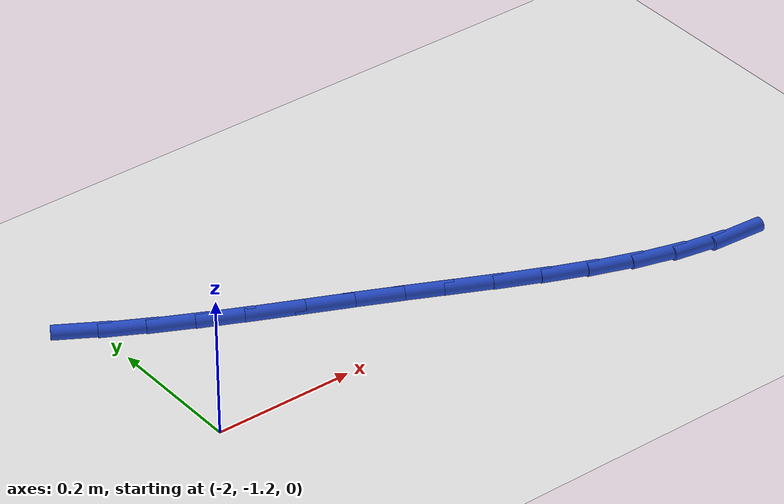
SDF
<sdf version="1.6">
 <world name="default">
  <model name="ground_plane">
   <static>1</static>
   <link name="link">
    <collision name="collision">
     <geometry><plane><normal>0 0 1</normal><size>100 100</size></plane></geometry>
     <surface><friction><ode><mu>100</mu><mu2>50</mu2></ode></friction></surface>
    </collision>
    <visual name="visual">
     <cast_shadows>0</cast_shadows>
     <geometry><plane><normal>0 0 1</normal><size>100 100</size></plane></geometry>
     <material>
      <script><uri>file://media/materials/scripts/gazebo.material</uri><name>Gazebo/WhiteGlow</name></script>
     </material>
    </visual>
   </link>
  </model>
  <model name="line">
   <link name="link_75">
    <pose>-2.0207562787094804 -0.9274636396705164 0.01 0 1.57 -0.547700571020834</pose>
    <collision name="collision">
     <geometry><cylinder><radius>0.01</radius><length>0.08</length></cylinder></geometry>
    </collision>
    <visual name="visual">
     <material>
      <script><name>Gazebo/Blue</name><uri>file://media/materials/scripts/gazebo.material</uri></script>
     </material>
     <geometry><cylinder><radius>0.01</radius><length>0.08</length></cylinder></geometry>
    </visual>
   </link>
   <link name="link_76">
    <pose>-1.9692782995515379 -0.9588624210705634 0.01 0 1.57 -0.4993900773391051</pose>
    <collision name="collision">
     <geometry><cylinder><radius>0.01</radius><length>0.08</length></cylinder></geometry>
    </collision>
    <visual name="visual">
     <material>
      <script><name>Gazebo/Blue</name><uri>file://media/materials/scripts/gazebo.material</uri></script>
     </material>
     <geometry><cylinder><radius>0.01</radius><length>0.08</length></cylinder></geometry>
    </visual>
   </link>
   <link name="link_77">
    <pose>-1.9149379938659956 -0.9885056447868948 0.01 0 1.57 -0.4647903911772186</pose>
    <collision name="collision">
     <geometry><cylinder><radius>0.01</radius><length>0.08</length></cylinder></geometry>
    </collision>
    <visual name="visual">
     <material>
      <script><name>Gazebo/Blue</name><uri>file://media/materials/scripts/gazebo.material</uri></script>
     </material>
     <geometry><cylinder><radius>0.01</radius><length>0.08</length></cylinder></geometry>
    </visual>
   </link>
   <link name="link_78">
    <pose>-1.8583272007567118 -1.0168919548667243 0.01 0 1.57 -0.44261593372257907</pose>
    <collision name="collision">
     <geometry><cylinder><radius>0.01</radius><length>0.08</length></cylinder></geometry>
    </collision>
    <visual name="visual">
     <material>
      <script><name>Gazebo/Blue</name><uri>file://media/materials/scripts/gazebo.material</uri></script>
     </material>
     <geometry><cylinder><radius>0.01</radius><length>0.08</length></cylinder></geometry>
    </visual>
   </link>
   <link name="link_79">
    <pose>-1.8000377593275434 -1.044519995357263 0.01 0 1.57 -0.4319077129404349</pose>
    <collision name="collision">
     <geometry><cylinder><radius>0.01</radius><length>0.08</length></cylinder></geometry>
    </collision>
    <visual name="visual">
     <material>
      <script><name>Gazebo/Blue</name><uri>file://media/materials/scripts/gazebo.material</uri></script>
     </material>
     <geometry><cylinder><radius>0.01</radius><length>0.08</length></cylinder></geometry>
    </visual>
   </link>
   <link name="link_80">
    <pose>-1.7406615086823454 -1.0718884103057231 0.01 0 1.57 -0.4320574577965329</pose>
    <collision name="collision">
     <geometry><cylinder><radius>0.01</radius><length>0.08</length></cylinder></geometry>
    </collision>
    <visual name="visual">
     <material>
      <script><name>Gazebo/Blue</name><uri>file://media/materials/scripts/gazebo.material</uri></script>
     </material>
     <geometry><cylinder><radius>0.01</radius><length>0.08</length></cylinder></geometry>
    </visual>
   </link>
   <link name="link_81">
    <pose>-1.6807902879249739 -1.0994958437593174 0.01 0 1.57 -0.4420840871450925</pose>
    <collision name="collision">
     <geometry><cylinder><radius>0.01</radius><length>0.08</length></cylinder></geometry>
    </collision>
    <visual name="visual">
     <material>
      <script><name>Gazebo/Blue</name><uri>file://media/materials/scripts/gazebo.material</uri></script>
     </material>
     <geometry><cylinder><radius>0.01</radius><length>0.08</length></cylinder></geometry>
    </visual>
   </link>
   <link name="link_82">
    <pose>-1.620999904977639 -1.1277963673505813 0.01 0 1.57 -0.4495933548093528</pose>
    <collision name="collision">
     <geometry><cylinder><radius>0.01</radius><length>0.08</length></cylinder></geometry>
    </collision>
    <visual name="visual">
     <material>
      <script><name>Gazebo/Blue</name><uri>file://media/materials/scripts/gazebo.material</uri></script>
     </material>
     <geometry><cylinder><radius>0.01</radius><length>0.08</length></cylinder></geometry>
    </visual>
   </link>
   <link name="link_83">
    <pose>-1.561586513883594 -1.1564665149776374 0.01 0 1.57 -0.44401701980004915</pose>
    <collision name="collision">
     <geometry><cylinder><radius>0.01</radius><length>0.08</length></cylinder></geometry>
    </collision>
    <visual name="visual">
     <material>
      <script><name>Gazebo/Blue</name><uri>file://media/materials/scripts/gazebo.material</uri></script>
     </material>
     <geometry><cylinder><radius>0.01</radius><length>0.08</length></cylinder></geometry>
    </visual>
   </link>
   <link name="link_84">
    <pose>-1.502608638606615 -1.1845221239864308 0.01 0 1.57 -0.4244844911767459</pose>
    <collision name="collision">
     <geometry><cylinder><radius>0.01</radius><length>0.08</length></cylinder></geometry>
    </collision>
    <visual name="visual">
     <material>
      <script><name>Gazebo/Blue</name><uri>file://media/materials/scripts/gazebo.material</uri></script>
     </material>
     <geometry><cylinder><radius>0.01</radius><length>0.08</length></cylinder></geometry>
    </visual>
   </link>
   <link name="link_85">
    <pose>-1.4441172466124643 -1.2109580219576739 0.01 0 1.57 -0.38983410650267536</pose>
    <collision name="collision">
     <geometry><cylinder><radius>0.01</radius><length>0.08</length></cylinder></geometry>
    </collision>
    <visual name="visual">
     <material>
      <script><name>Gazebo/Blue</name><uri>file://media/materials/scripts/gazebo.material</uri></script>
     </material>
     <geometry><cylinder><radius>0.01</radius><length>0.08</length></cylinder></geometry>
    </visual>
   </link>
   <link name="link_86">
    <pose>-1.3861633053669067 -1.2347690364720767 0.01 0 1.57 -0.3382738775084098</pose>
    <collision name="collision">
     <geometry><cylinder><radius>0.01</radius><length>0.08</length></cylinder></geometry>
    </collision>
    <visual name="visual">
     <material>
      <script><name>Gazebo/Blue</name><uri>file://media/materials/scripts/gazebo.material</uri></script>
     </material>
     <geometry><cylinder><radius>0.01</radius><length>0.08</length></cylinder></geometry>
    </visual>
   </link>
   <link name="link_87">
    <pose>-1.328797782335706 -1.254949995110351 0.01 0 1.57 -0.2674816807172398</pose>
    <collision name="collision">
     <geometry><cylinder><radius>0.01</radius><length>0.08</length></cylinder></geometry>
    </collision>
    <visual name="visual">
     <material>
      <script><name>Gazebo/Blue</name><uri>file://media/materials/scripts/gazebo.material</uri></script>
     </material>
     <geometry><cylinder><radius>0.01</radius><length>0.08</length></cylinder></geometry>
    </visual>
   </link>
   <link name="link_88">
    <pose>-1.2720716449846254 -1.2704957254532097 0.01 0 1.57 -0.17496054680671083</pose>
    <collision name="collision">
     <geometry><cylinder><radius>0.01</radius><length>0.08</length></cylinder></geometry>
    </collision>
    <visual name="visual">
     <material>
      <script><name>Gazebo/Blue</name><uri>file://media/materials/scripts/gazebo.material</uri></script>
     </material>
     <geometry><cylinder><radius>0.01</radius><length>0.08</length></cylinder></geometry>
    </visual>
   </link>
   <link name="link_89">
    <pose>-1.2160358607794284 -1.280401055081363 0.01 0 1.57 -0.05888452114558836</pose>
    <collision name="collision">
     <geometry><cylinder><radius>0.01</radius><length>0.08</length></cylinder></geometry>
    </collision>
    <visual name="visual">
     <material>
      <script><name>Gazebo/Blue</name><uri>file://media/materials/scripts/gazebo.material</uri></script>
     </material>
     <geometry><cylinder><radius>0.01</radius><length>0.08</length></cylinder></geometry>
    </visual>
   </link>
  </model>
 </world>
</sdf>
